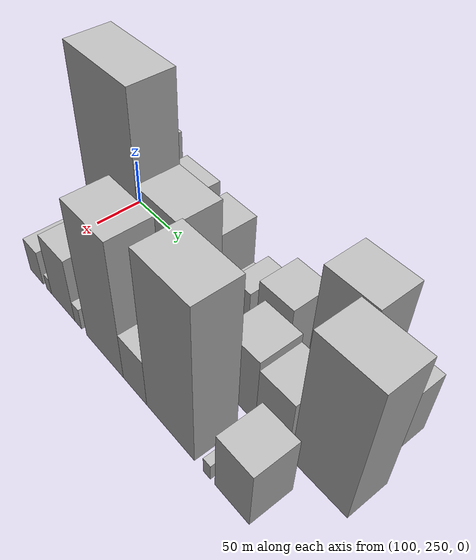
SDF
<sdf version="1.6">
 <world name="default">
  <model name="building_25">
   <static>1</static>
   <pose>100.0000 281.2911 0 0.000000 0.000000 0.000000</pose>
   <link name="link">
    <pose>0 0 51.00 0 0 0</pose>
    <collision name="collision"><geometry><box><size>40.0000 31.3057 102.0000</size></box></geometry></collision>
    <visual name="visual">
     <cast_shadows>0</cast_shadows>
     <geometry><box><size>40.0000 31.3057 102.0000</size></box></geometry>
     <material>
      <script>
       <uri>model://HANNAS_wall/materials/scripts</uri>
       <uri>model://HANNAS_wall/materials/textures</uri>
       <name>vrc/HANNAS_wall</name>
      </script>
     </material>
    </visual>
   </link>
  </model>
  <model name="building_26">
   <static>1</static>
   <pose>100.0000 326.9286 0 0.000000 0.000000 0.000000</pose>
   <link name="link">
    <pose>0 0 40.50 0 0 0</pose>
    <collision name="collision"><geometry><box><size>40.0000 45.9691 81.0000</size></box></geometry></collision>
    <visual name="visual">
     <cast_shadows>0</cast_shadows>
     <geometry><box><size>40.0000 45.9691 81.0000</size></box></geometry>
     <material>
      <script>
       <uri>model://HANNAS_wall/materials/scripts</uri>
       <uri>model://HANNAS_wall/materials/textures</uri>
       <name>vrc/HANNAS_wall</name>
      </script>
     </material>
    </visual>
   </link>
  </model>
  <model name="building_27">
   <static>1</static>
   <pose>100.0000 378.2967 0 0.000000 0.000000 0.000000</pose>
   <link name="link">
    <pose>0 0 37.50 0 0 0</pose>
    <collision name="collision"><geometry><box><size>40.0000 38.7671 75.0000</size></box></geometry></collision>
    <visual name="visual">
     <cast_shadows>0</cast_shadows>
     <geometry><box><size>40.0000 38.7671 75.0000</size></box></geometry>
     <material>
      <script>
       <uri>model://HANNAS_wall/materials/scripts</uri>
       <uri>model://HANNAS_wall/materials/textures</uri>
       <name>vrc/HANNAS_wall</name>
      </script>
     </material>
    </visual>
   </link>
  </model>
  <model name="building_28">
   <static>1</static>
   <pose>100.0000 402.6422 0 0.000000 0.000000 0.000000</pose>
   <link name="link">
    <pose>0 0 10.50 0 0 0</pose>
    <collision name="collision"><geometry><box><size>40.0000 9.9240 21.0000</size></box></geometry></collision>
    <visual name="visual">
     <cast_shadows>0</cast_shadows>
     <geometry><box><size>40.0000 9.9240 21.0000</size></box></geometry>
     <material>
      <script>
       <uri>model://HANNAS_wall/materials/scripts</uri>
       <uri>model://HANNAS_wall/materials/textures</uri>
       <name>vrc/HANNAS_wall</name>
      </script>
     </material>
    </visual>
   </link>
  </model>
  <model name="building_29">
   <static>1</static>
   <pose>100.0000 426.2392 0 0.000000 0.000000 0.000000</pose>
   <link name="link">
    <pose>0 0 21.00 0 0 0</pose>
    <collision name="collision"><geometry><box><size>40.0000 23.2699 42.0000</size></box></geometry></collision>
    <visual name="visual">
     <cast_shadows>0</cast_shadows>
     <geometry><box><size>40.0000 23.2699 42.0000</size></box></geometry>
     <material>
      <script>
       <uri>model://HANNAS_wall/materials/scripts</uri>
       <uri>model://HANNAS_wall/materials/textures</uri>
       <name>vrc/HANNAS_wall</name>
      </script>
     </material>
    </visual>
   </link>
  </model>
  <model name="building_30">
   <static>1</static>
   <pose>100.0000 466.0563 0 0.000000 0.000000 0.000000</pose>
   <link name="link">
    <pose>0 0 33.00 0 0 0</pose>
    <collision name="collision"><geometry><box><size>40.0000 38.3643 66.0000</size></box></geometry></collision>
    <visual name="visual">
     <cast_shadows>0</cast_shadows>
     <geometry><box><size>40.0000 38.3643 66.0000</size></box></geometry>
     <material>
      <script>
       <uri>model://HANNAS_wall/materials/scripts</uri>
       <uri>model://HANNAS_wall/materials/textures</uri>
       <name>vrc/HANNAS_wall</name>
      </script>
     </material>
    </visual>
   </link>
  </model>
  <model name="building_31">
   <static>1</static>
   <pose>100.0000 494.9782 0 0.000000 0.000000 0.000000</pose>
   <link name="link">
    <pose>0 0 7.50 0 0 0</pose>
    <collision name="collision"><geometry><box><size>40.0000 7.4796 15.0000</size></box></geometry></collision>
    <visual name="visual">
     <cast_shadows>0</cast_shadows>
     <geometry><box><size>40.0000 7.4796 15.0000</size></box></geometry>
     <material>
      <script>
       <uri>model://HANNAS_wall/materials/scripts</uri>
       <uri>model://HANNAS_wall/materials/textures</uri>
       <name>vrc/HANNAS_wall</name>
      </script>
     </material>
    </visual>
   </link>
  </model>
  <model name="building_32">
   <static>1</static>
   <pose>100.0000 529.8098 0 0.000000 0.000000 0.000000</pose>
   <link name="link">
    <pose>0 0 66.00 0 0 0</pose>
    <collision name="collision"><geometry><box><size>40.0000 50.1836 132.0000</size></box></geometry></collision>
    <visual name="visual">
     <cast_shadows>0</cast_shadows>
     <geometry><box><size>40.0000 50.1836 132.0000</size></box></geometry>
     <material>
      <script>
       <uri>model://HANNAS_wall/materials/scripts</uri>
       <uri>model://HANNAS_wall/materials/textures</uri>
       <name>vrc/HANNAS_wall</name>
      </script>
     </material>
    </visual>
   </link>
  </model>
  <model name="building_33">
   <static>1</static>
   <pose>100.0000 573.1475 0 0.000000 0.000000 0.000000</pose>
   <link name="link">
    <pose>0 0 34.50 0 0 0</pose>
    <collision name="collision"><geometry><box><size>40.0000 36.4918 69.0000</size></box></geometry></collision>
    <visual name="visual">
     <cast_shadows>0</cast_shadows>
     <geometry><box><size>40.0000 36.4918 69.0000</size></box></geometry>
     <material>
      <script>
       <uri>model://HANNAS_wall/materials/scripts</uri>
       <uri>model://HANNAS_wall/materials/textures</uri>
       <name>vrc/HANNAS_wall</name>
      </script>
     </material>
    </visual>
   </link>
  </model>
  <model name="building_56">
   <static>1</static>
   <pose>155.0000 329.6477 0 0.000000 0.000000 0.000000</pose>
   <link name="link">
    <pose>0 0 109.50 0 0 0</pose>
    <collision name="collision"><geometry><box><size>40.0000 78.0448 219.0000</size></box></geometry></collision>
    <visual name="visual">
     <cast_shadows>0</cast_shadows>
     <geometry><box><size>40.0000 78.0448 219.0000</size></box></geometry>
     <material>
      <script>
       <uri>model://HANNAS_wall/materials/scripts</uri>
       <uri>model://HANNAS_wall/materials/textures</uri>
       <name>vrc/HANNAS_wall</name>
      </script>
     </material>
    </visual>
   </link>
  </model>
  <model name="building_57">
   <static>1</static>
   <pose>155.0000 393.9776 0 0.000000 0.000000 0.000000</pose>
   <link name="link">
    <pose>0 0 69.00 0 0 0</pose>
    <collision name="collision"><geometry><box><size>40.0000 50.6150 138.0000</size></box></geometry></collision>
    <visual name="visual">
     <cast_shadows>0</cast_shadows>
     <geometry><box><size>40.0000 50.6150 138.0000</size></box></geometry>
     <material>
      <script>
       <uri>model://HANNAS_wall/materials/scripts</uri>
       <uri>model://HANNAS_wall/materials/textures</uri>
       <name>vrc/HANNAS_wall</name>
      </script>
     </material>
    </visual>
   </link>
  </model>
  <model name="building_58">
   <static>1</static>
   <pose>155.0000 432.3639 0 0.000000 0.000000 0.000000</pose>
   <link name="link">
    <pose>0 0 25.50 0 0 0</pose>
    <collision name="collision"><geometry><box><size>40.0000 26.1575 51.0000</size></box></geometry></collision>
    <visual name="visual">
     <cast_shadows>0</cast_shadows>
     <geometry><box><size>40.0000 26.1575 51.0000</size></box></geometry>
     <material>
      <script>
       <uri>model://HANNAS_wall/materials/scripts</uri>
       <uri>model://HANNAS_wall/materials/textures</uri>
       <name>vrc/HANNAS_wall</name>
      </script>
     </material>
    </visual>
   </link>
  </model>
  <model name="building_59">
   <static>1</static>
   <pose>155.0000 452.9784 0 0.000000 0.000000 0.000000</pose>
   <link name="link">
    <pose>0 0 15.00 0 0 0</pose>
    <collision name="collision"><geometry><box><size>40.0000 15.0715 30.0000</size></box></geometry></collision>
    <visual name="visual">
     <cast_shadows>0</cast_shadows>
     <geometry><box><size>40.0000 15.0715 30.0000</size></box></geometry>
     <material>
      <script>
       <uri>model://HANNAS_wall/materials/scripts</uri>
       <uri>model://HANNAS_wall/materials/textures</uri>
       <name>vrc/HANNAS_wall</name>
      </script>
     </material>
    </visual>
   </link>
  </model>
  <model name="building_60">
   <static>1</static>
   <pose>155.0000 489.3522 0 0.000000 0.000000 0.000000</pose>
   <link name="link">
    <pose>0 0 37.50 0 0 0</pose>
    <collision name="collision"><geometry><box><size>40.0000 39.6760 75.0000</size></box></geometry></collision>
    <visual name="visual">
     <cast_shadows>0</cast_shadows>
     <geometry><box><size>40.0000 39.6760 75.0000</size></box></geometry>
     <material>
      <script>
       <uri>model://HANNAS_wall/materials/scripts</uri>
       <uri>model://HANNAS_wall/materials/textures</uri>
       <name>vrc/HANNAS_wall</name>
      </script>
     </material>
    </visual>
   </link>
  </model>
  <model name="building_61">
   <static>1</static>
   <pose>155.0000 527.2222 0 0.000000 0.000000 0.000000</pose>
   <link name="link">
    <pose>0 0 33.00 0 0 0</pose>
    <collision name="collision"><geometry><box><size>40.0000 36.0640 66.0000</size></box></geometry></collision>
    <visual name="visual">
     <cast_shadows>0</cast_shadows>
     <geometry><box><size>40.0000 36.0640 66.0000</size></box></geometry>
     <material>
      <script>
       <uri>model://HANNAS_wall/materials/scripts</uri>
       <uri>model://HANNAS_wall/materials/textures</uri>
       <name>vrc/HANNAS_wall</name>
      </script>
     </material>
    </visual>
   </link>
  </model>
  <model name="building_62">
   <static>1</static>
   <pose>155.0000 576.1279 0 0.000000 0.000000 0.000000</pose>
   <link name="link">
    <pose>0 0 75.00 0 0 0</pose>
    <collision name="collision"><geometry><box><size>40.0000 55.7476 150.0000</size></box></geometry></collision>
    <visual name="visual">
     <cast_shadows>0</cast_shadows>
     <geometry><box><size>40.0000 55.7476 150.0000</size></box></geometry>
     <material>
      <script>
       <uri>model://HANNAS_wall/materials/scripts</uri>
       <uri>model://HANNAS_wall/materials/textures</uri>
       <name>vrc/HANNAS_wall</name>
      </script>
     </material>
    </visual>
   </link>
  </model>
  <model name="building_89">
   <static>1</static>
   <pose>210.0000 275.7129 0 0.000000 0.000000 0.000000</pose>
   <link name="link">
    <pose>0 0 19.50 0 0 0</pose>
    <collision name="collision"><geometry><box><size>40.0000 23.1064 39.0000</size></box></geometry></collision>
    <visual name="visual">
     <cast_shadows>0</cast_shadows>
     <geometry><box><size>40.0000 23.1064 39.0000</size></box></geometry>
     <material>
      <script>
       <uri>model://HANNAS_wall/materials/scripts</uri>
       <uri>model://HANNAS_wall/materials/textures</uri>
       <name>vrc/HANNAS_wall</name>
      </script>
     </material>
    </visual>
   </link>
  </model>
  <model name="building_90">
   <static>1</static>
   <pose>210.0000 297.6463 0 0.000000 0.000000 0.000000</pose>
   <link name="link">
    <pose>0 0 9.00 0 0 0</pose>
    <collision name="collision"><geometry><box><size>40.0000 8.7603 18.0000</size></box></geometry></collision>
    <visual name="visual">
     <cast_shadows>0</cast_shadows>
     <geometry><box><size>40.0000 8.7603 18.0000</size></box></geometry>
     <material>
      <script>
       <uri>model://HANNAS_wall/materials/scripts</uri>
       <uri>model://HANNAS_wall/materials/textures</uri>
       <name>vrc/HANNAS_wall</name>
      </script>
     </material>
    </visual>
   </link>
  </model>
  <model name="building_91">
   <static>1</static>
   <pose>210.0000 321.3708 0 0.000000 0.000000 0.000000</pose>
   <link name="link">
    <pose>0 0 36.00 0 0 0</pose>
    <collision name="collision"><geometry><box><size>40.0000 38.6886 72.0000</size></box></geometry></collision>
    <visual name="visual">
     <cast_shadows>0</cast_shadows>
     <geometry><box><size>40.0000 38.6886 72.0000</size></box></geometry>
     <material>
      <script>
       <uri>model://HANNAS_wall/materials/scripts</uri>
       <uri>model://HANNAS_wall/materials/textures</uri>
       <name>vrc/HANNAS_wall</name>
      </script>
     </material>
    </visual>
   </link>
  </model>
  <model name="building_92">
   <static>1</static>
   <pose>210.0000 346.2241 0 0.000000 0.000000 0.000000</pose>
   <link name="link">
    <pose>0 0 12.00 0 0 0</pose>
    <collision name="collision"><geometry><box><size>40.0000 11.0179 24.0000</size></box></geometry></collision>
    <visual name="visual">
     <cast_shadows>0</cast_shadows>
     <geometry><box><size>40.0000 11.0179 24.0000</size></box></geometry>
     <material>
      <script>
       <uri>model://HANNAS_wall/materials/scripts</uri>
       <uri>model://HANNAS_wall/materials/textures</uri>
       <name>vrc/HANNAS_wall</name>
      </script>
     </material>
    </visual>
   </link>
  </model>
  <model name="building_93">
   <static>1</static>
   <pose>210.0000 387.0645 0 0.000000 0.000000 0.000000</pose>
   <link name="link">
    <pose>0 0 75.00 0 0 0</pose>
    <collision name="collision"><geometry><box><size>40.0000 54.6628 150.0000</size></box></geometry></collision>
    <visual name="visual">
     <cast_shadows>0</cast_shadows>
     <geometry><box><size>40.0000 54.6628 150.0000</size></box></geometry>
     <material>
      <script>
       <uri>model://HANNAS_wall/materials/scripts</uri>
       <uri>model://HANNAS_wall/materials/textures</uri>
       <name>vrc/HANNAS_wall</name>
      </script>
     </material>
    </visual>
   </link>
  </model>
  <model name="building_94">
   <static>1</static>
   <pose>210.0000 430.3559 0 0.000000 0.000000 0.000000</pose>
   <link name="link">
    <pose>0 0 27.00 0 0 0</pose>
    <collision name="collision"><geometry><box><size>40.0000 31.9201 54.0000</size></box></geometry></collision>
    <visual name="visual">
     <cast_shadows>0</cast_shadows>
     <geometry><box><size>40.0000 31.9201 54.0000</size></box></geometry>
     <material>
      <script>
       <uri>model://HANNAS_wall/materials/scripts</uri>
       <uri>model://HANNAS_wall/materials/textures</uri>
       <name>vrc/HANNAS_wall</name>
      </script>
     </material>
    </visual>
   </link>
  </model>
  <model name="building_95">
   <static>1</static>
   <pose>210.0000 476.0511 0 0.000000 0.000000 0.000000</pose>
   <link name="link">
    <pose>0 0 85.50 0 0 0</pose>
    <collision name="collision"><geometry><box><size>40.0000 59.4703 171.0000</size></box></geometry></collision>
    <visual name="visual">
     <cast_shadows>0</cast_shadows>
     <geometry><box><size>40.0000 59.4703 171.0000</size></box></geometry>
     <material>
      <script>
       <uri>model://HANNAS_wall/materials/scripts</uri>
       <uri>model://HANNAS_wall/materials/textures</uri>
       <name>vrc/HANNAS_wall</name>
      </script>
     </material>
    </visual>
   </link>
  </model>
  <model name="building_96">
   <static>1</static>
   <pose>210.0000 519.9636 0 0.000000 0.000000 0.000000</pose>
   <link name="link">
    <pose>0 0 9.00 0 0 0</pose>
    <collision name="collision"><geometry><box><size>40.0000 8.3547 18.0000</size></box></geometry></collision>
    <visual name="visual">
     <cast_shadows>0</cast_shadows>
     <geometry><box><size>40.0000 8.3547 18.0000</size></box></geometry>
     <material>
      <script>
       <uri>model://HANNAS_wall/materials/scripts</uri>
       <uri>model://HANNAS_wall/materials/textures</uri>
       <name>vrc/HANNAS_wall</name>
      </script>
     </material>
    </visual>
   </link>
  </model>
  <model name="building_97">
   <static>1</static>
   <pose>210.0000 547.5383 0 0.000000 0.000000 0.000000</pose>
   <link name="link">
    <pose>0 0 33.00 0 0 0</pose>
    <collision name="collision"><geometry><box><size>40.0000 36.7946 66.0000</size></box></geometry></collision>
    <visual name="visual">
     <cast_shadows>0</cast_shadows>
     <geometry><box><size>40.0000 36.7946 66.0000</size></box></geometry>
     <material>
      <script>
       <uri>model://HANNAS_wall/materials/scripts</uri>
       <uri>model://HANNAS_wall/materials/textures</uri>
       <name>vrc/HANNAS_wall</name>
      </script>
     </material>
    </visual>
   </link>
  </model>
 </world>
</sdf>
